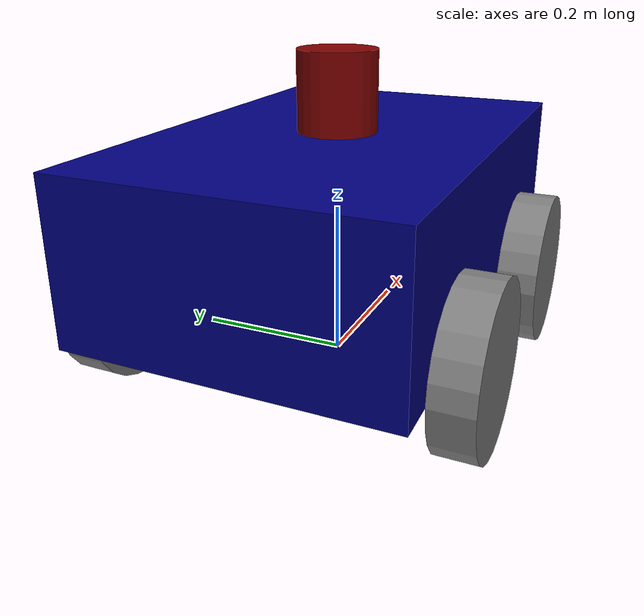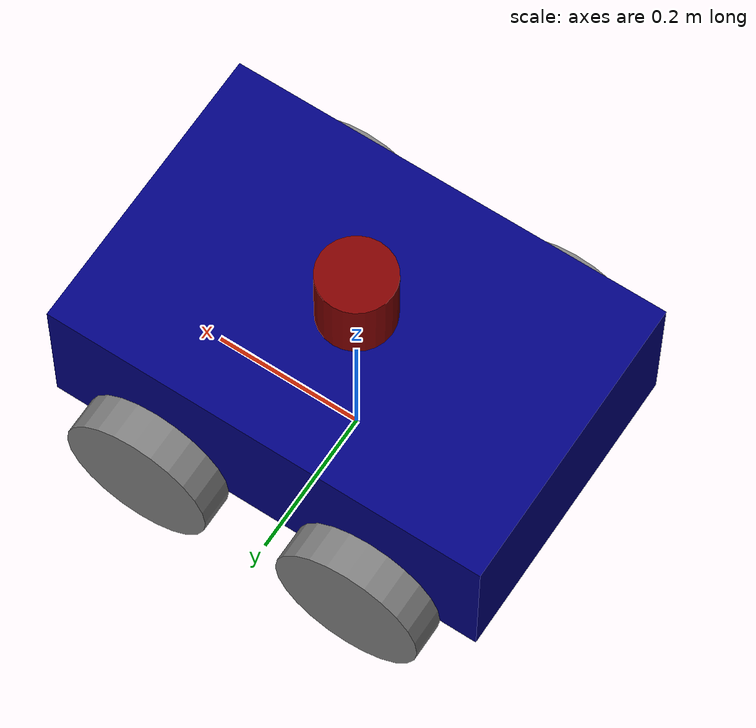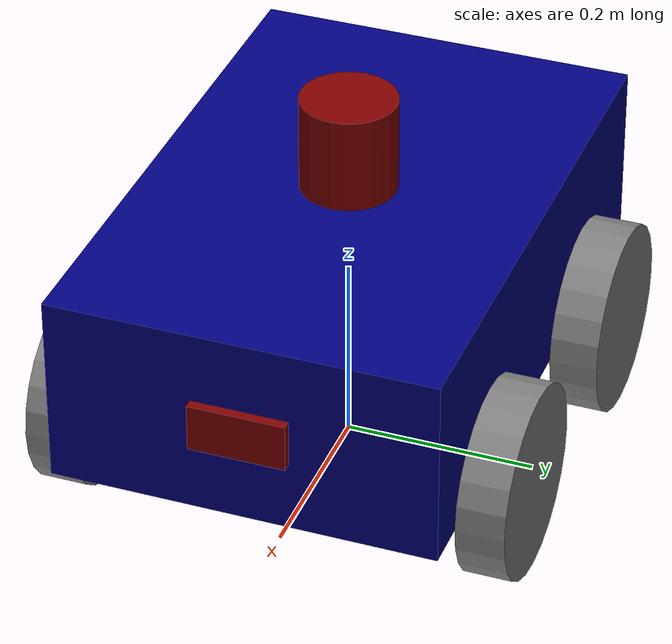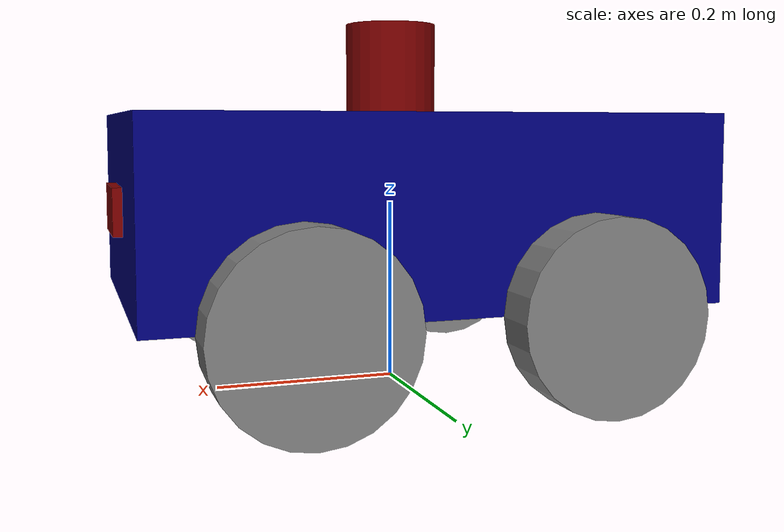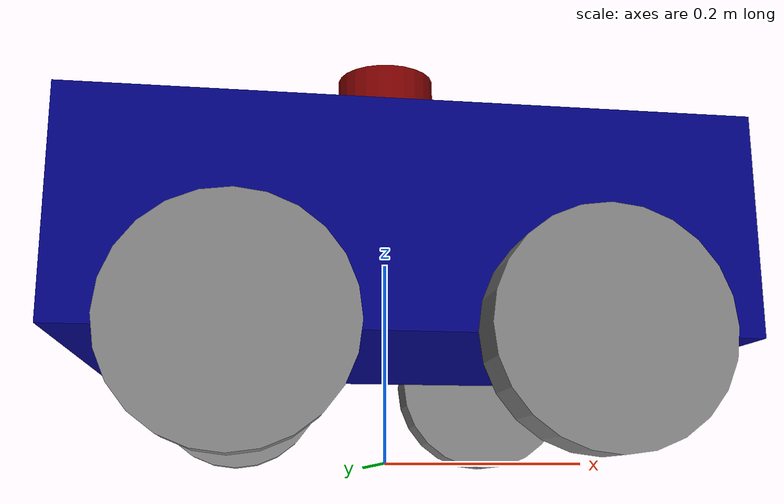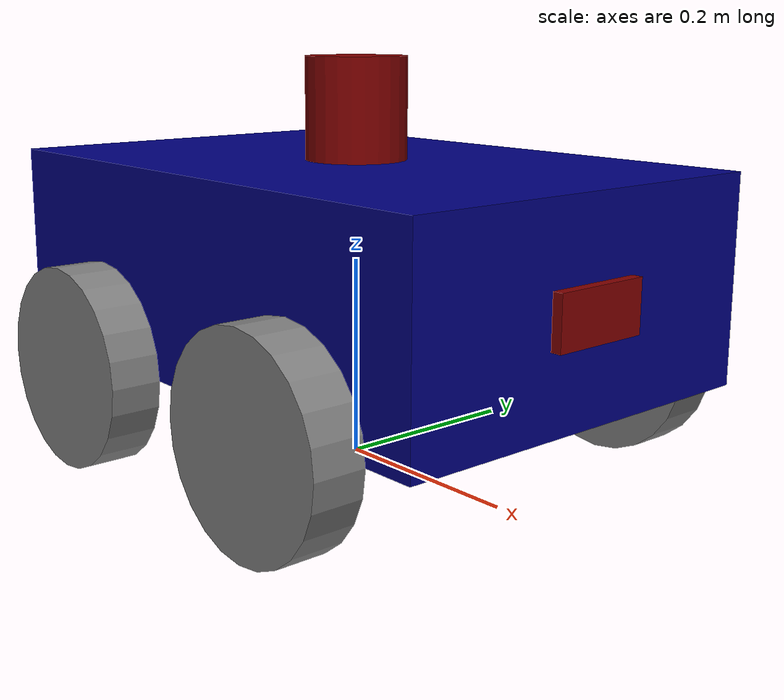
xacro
<?xml version="1.0"?>
<robot name="baldybot" xmlns:xacro="http://www.ros.org/wiki/xacro">

    <xacro:arg name="use_ros2_control" default="true"/>
    <xacro:arg name="sim_mode" default="false"/>

    <xacro:include filename="common_properties.xacro" />
    <xacro:include filename="mobile_base.xacro" />

    <xacro:if value="$(arg use_ros2_control)">
        <xacro:include filename="ros2_control.xacro" />
    </xacro:if>
    <xacro:unless value="$(arg use_ros2_control)">
        <xacro:include filename="mobile_base_gazebo.xacro" />
    </xacro:unless>

    <xacro:include filename="lidar.xacro" />

    <xacro:include filename="camera.xacro" />

</robot>

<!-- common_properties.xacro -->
<robot xmlns:xacro="http://www.ros.org/wiki/xacro">

    <material name="blue">
        <color rgba="0 0 0.5 1" />
    </material>

    <material name="grey">
        <color rgba="0.5 0.5 0.5 1" />
    </material>

    <material name="red">
        <color rgba="0.5 0 0 1" />
    </material>

    <material name="yellow">
        <color rgba="1 1 0 1"/>
    </material>

    <material name="orange">
        <color rgba="1 0.5 0 1"/>
    </material>

    <xacro:macro name="box_inertia" params="m l w h xyz rpy">
        <inertial>
            <origin xyz="${xyz}" rpy="${rpy}" />
            <mass value="${m}" />
            <inertia ixx="${(m/12) * (h*h + l*l)}" ixy="0" ixz="0"
                     iyy="${(m/12) * (w*w + l*l)}" iyz="0"
                     izz="${(m/12) * (w*w + h*h)}" />
        </inertial>
    </xacro:macro>

    <xacro:macro name="cylinder_inertia" params="m r h xyz rpy">
        <inertial>
            <origin xyz="${xyz}" rpy="${rpy}" />
            <mass value="${m}" />
            <inertia ixx="${(m/12) * (3*r*r + h*h)}" ixy="0" ixz="0"
                     iyy="${(m/12) * (3*r*r + h*h)}" iyz="0"
                     izz="${(m/2) * (r*r)}" />
        </inertial>
    </xacro:macro>

    <xacro:macro name="sphere_inertia" params="m r xyz rpy">
        <inertial>
            <origin xyz="${xyz}" rpy="${rpy}" />
            <mass value="${m}" />
            <inertia ixx="${(2/5) * m * r * r}" ixy="0" ixz="0"
                     iyy="${(2/5) * m * r * r}" iyz="0"
                     izz="${(2/5) * m * r * r}" />
        </inertial>
    </xacro:macro>

</robot>

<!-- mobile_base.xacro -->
<robot xmlns:xacro="http://www.ros.org/wiki/xacro">

    <xacro:property name="base_length" value="0.6" />
    <xacro:property name="base_width" value="0.4" />
    <xacro:property name="base_height" value="0.2" />
    <xacro:property name="wheel_radius" value="0.1" />
    <xacro:property name="wheel_length" value="0.05" />

    <link name="base_footprint" />

    <link name="base_link">
        <visual>
            <geometry>
                <box size="${base_length} ${base_width} ${base_height}" />
            </geometry>
            <origin xyz="0 0 ${base_height / 2.0}" rpy="0 0 0" />
            <material name="blue" />
        </visual>
        <collision>
            <geometry>
                <box size="${base_length} ${base_width} ${base_height}" />
            </geometry>
            <origin xyz="0 0 ${base_height / 2.0}" rpy="0 0 0" />
        </collision>
        <!-- we mulitply all the parameters for the inertia by 2 in order to fix the drift problem -->
        <xacro:box_inertia m="5.0" l="${2*base_length}" w="${2*base_width}" h="${2*base_height}"
                           xyz="0 0 ${base_height / 2.0}" rpy="0 0 0" />
    </link>

    <xacro:macro name="wheel_link" params="prefix">
        <link name="${prefix}_wheel_link">
            <visual>
                <geometry>
                    <cylinder radius="${wheel_radius}" length="${wheel_length}" />
                </geometry>
                <origin xyz="0 0 0" rpy="${pi / 2.0} 0 0" />
                <material name="grey" />
            </visual>
            <collision>
                <geometry>
                    <cylinder radius="${wheel_radius}" length="${wheel_length}" />
                </geometry>
                <origin xyz="0 0 0" rpy="${pi / 2.0} 0 0" />
            </collision>
            <xacro:cylinder_inertia m="1.0" r="${2*wheel_radius}" h="${2*wheel_length}"
                                    xyz="0 0 0" rpy="${pi / 2.0} 0 0" />
        </link>
    </xacro:macro>

    <xacro:wheel_link prefix="right_front" />
    <xacro:wheel_link prefix="right_back" />
    <xacro:wheel_link prefix="left_front" />
    <xacro:wheel_link prefix="left_back" />

    <joint name="base_joint" type="fixed">
        <parent link="base_footprint" />
        <child link="base_link" />
        <origin xyz="0 0 ${wheel_radius}" rpy="0 0 0"/>
    </joint>

    <joint name="base_right_front_wheel_joint" type="continuous">
        <parent link="base_link" />
        <child link="right_front_wheel_link" />
        <origin xyz="${-base_length / 4.0} ${-(base_width + wheel_length) / 2.0} 0" rpy="0 0 0" />
        <axis xyz="0 1 0" />
    </joint>

    <joint name="base_right_back_wheel_joint" type="continuous">
        <parent link="base_link" />
        <child link="right_back_wheel_link" />
        <origin xyz="${base_length / 4.0} ${-(base_width + wheel_length) / 2.0} 0" rpy="0 0 0" />
        <axis xyz="0 1 0" />
    </joint>

    <joint name="base_left_front_wheel_joint" type="continuous">
        <parent link="base_link" />
        <child link="left_front_wheel_link" />
        <origin xyz="${-base_length / 4.0} ${(base_width + wheel_length) / 2.0} 0" rpy="0 0 0" />
        <axis xyz="0 1 0" />
    </joint>

    <joint name="base_left_back_wheel_joint" type="continuous">
        <parent link="base_link" />
        <child link="left_back_wheel_link" />
        <origin xyz="${base_length / 4.0} ${(base_width + wheel_length) / 2.0} 0" rpy="0 0 0" />
        <axis xyz="0 1 0" />
    </joint>

</robot>

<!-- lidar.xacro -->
<robot xmlns:xacro="http://www.ros.org/wiki/xacro">

    <xacro:property name="lidar_radius" value="0.05" />
    <xacro:property name="lidar_length" value="0.1" />

    <link name="lidar_link">
        <visual>
            <geometry>
                <cylinder radius="${lidar_radius}" length="${lidar_length}" />
            </geometry>
            <material name="red" />
        </visual>
        <collision>
            <geometry>
                <cylinder radius="${lidar_radius}" length="${lidar_length}" />
            </geometry>
            <origin xyz="0 0 0" rpy="0 0 0" />
        </collision>
        <xacro:cylinder_inertia m="1.0" r="${2*lidar_radius}" h="${2*lidar_length}"
                                xyz="0 0 0" rpy="0 0 0" />
    </link>

    <joint name="base_lidar_joint" type="fixed">
        <parent link="base_link" />
        <child link="lidar_link" />
        <origin xyz="0 0 ${base_height + lidar_length/2.0}" rpy="0 0 0" />
    </joint>

    <gazebo reference="lidar_link">
        <material>Gazebo/Red</material>
        <sensor name="laser" type="ray">
            <pose>0 0 0 0 0 0</pose>
            <visualize>true</visualize>
            <update_rate>10.0</update_rate>
            <ray>
                <scan>
                    <horizontal>
                        <samples>360</samples>
                        <min_angle>-3.14</min_angle>
                        <max_angle>3.14</max_angle>
                    </horizontal>
                </scan>
                <range>
                    <min>0.3</min>
                    <max>12</max>
                </range>
            </ray>
            <plugin name="laser_controller" filename="libgazebo_ros_ray_sensor.so">
                <ros>
                    <argument>~/out:=scan</argument>
                </ros>
                <output_type>sensor_msgs/LaserScan</output_type>
                <frame_name>lidar_link</frame_name>
            </plugin>
        </sensor>
    </gazebo>

</robot>

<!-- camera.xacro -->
<robot xmlns:xacro="http://www.ros.org/wiki/xacro">

    <xacro:property name="camera_length" value="0.01" />
    <xacro:property name="camera_width" value="0.1" />
    <xacro:property name="camera_height" value="0.05" />

    <link name="camera_link">
        <visual>
            <geometry>
                <box size="${camera_length} ${camera_width} ${camera_height}" />
            </geometry>
            <material name="red" />
        </visual>
        <collision>
            <geometry>
                <box size="${camera_length} ${camera_width} ${camera_height}" />
            </geometry>
        </collision>
        <xacro:box_inertia m="0.1" l="${camera_length}" w="${camera_width}" h="${camera_height}"
                           xyz="0 0 0" rpy="0 0 0" />
    </link>

    <joint name="base_camera_joint" type="fixed">
        <parent link="base_link" />
        <child link="camera_link" />
        <origin xyz="${(base_length + camera_length) / 2.0} 0 ${base_height / 2.0}" rpy="0 0 0" />
    </joint>

    <gazebo reference="camera_link">
        <material>Gazebo/Red</material>
        <sensor name="camera_sensor" type="camera">
            <pose>0 0 0 0 0 0</pose>
            <visualize>true</visualize>
            <update_rate>10.0</update_rate>
            <plugin name="camera_controller" filename="libgazebo_ros_camera.so">
                <frame_name>camera_link</frame_name>
            </plugin>
        </sensor>
    </gazebo>

</robot>
